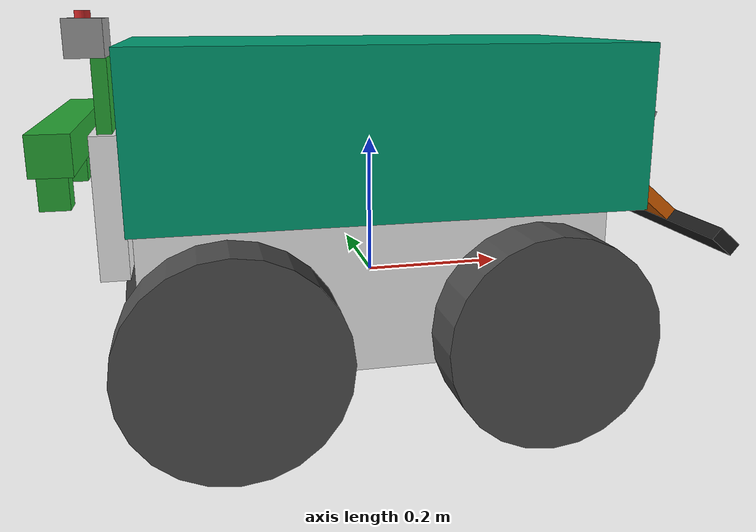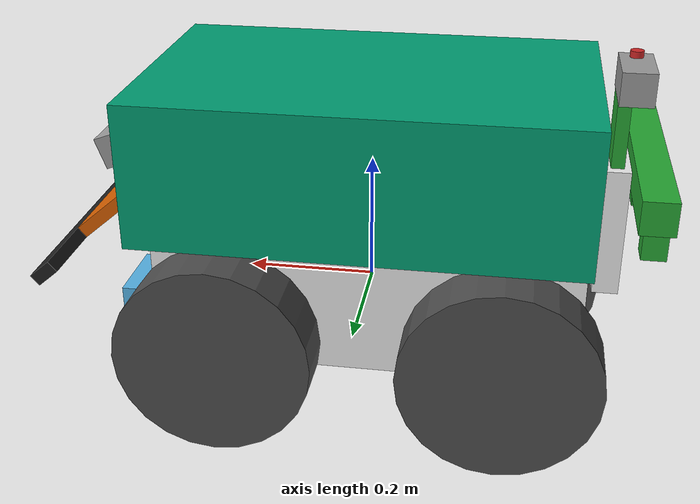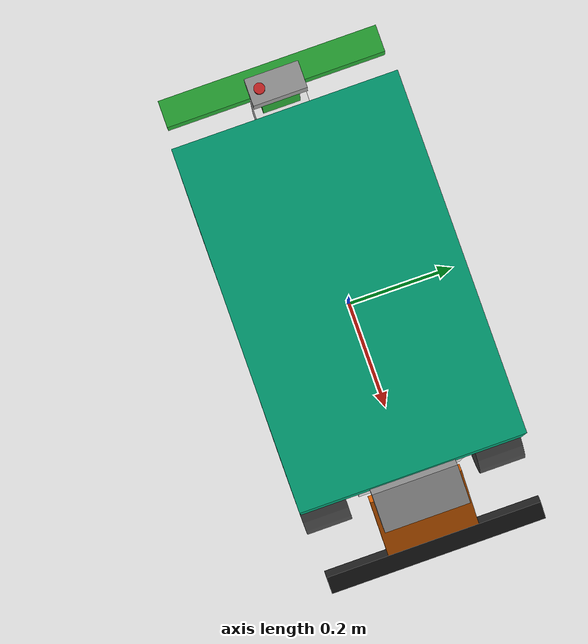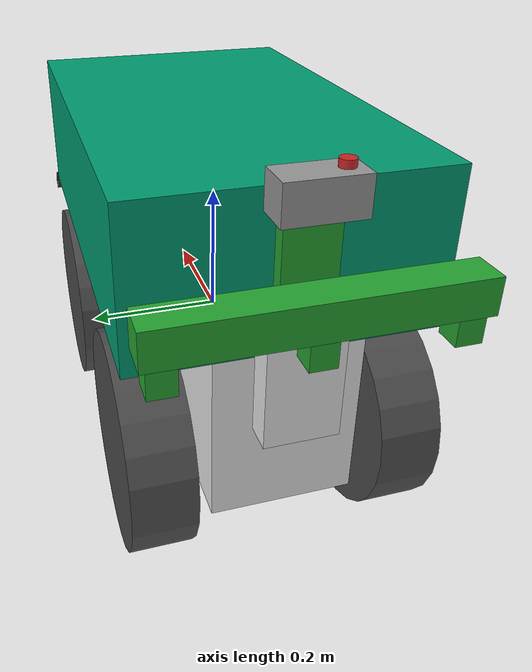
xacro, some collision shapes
<?xml version="1.0" encoding="UTF-8"?>
<!-- Fichier principal de construction du robot -->
<robot name="oz440" xmlns:xacro="http://www.ros.org/wiki/xacro">
	<xacro:include filename="$(find oz440_description)/urdf/properties.xacro" />
    <xacro:include filename="$(find oz440_description)/urdf/oz440.gazebo" />
	<xacro:include filename="$(find oz440_description)/urdf/macros.xacro" />

	<!-- link de base, OBLIGATOIRE -->
	<link name="footprint" />

	<!-- link pour la partie basse du chassis -->
	<link name="chassis_bottom">
  		<collision>
	  		<origin xyz="0 0 0" rpy="0 0 0" />
	        <geometry>
	          <box size="${chassis_bottom_length} ${chassis_bottom_width} ${chassis_bottom_height}"/>
	        </geometry>
      	</collision>
		<visual>
			<origin xyz="0 0 0" rpy="0 0 0"/>
			<geometry>
	  			<box size="${chassis_bottom_length} ${chassis_bottom_width} ${chassis_bottom_height}"/>
			</geometry>
			<material name="white"/>
		</visual>
		<inertial>
			<origin xyz="0 0 0" rpy="0 0 0"/>
			<mass value="${chassis_bottom_mass}"/>
			<box_inertia m="${chassis_bottom_mass}" x="${chassis_bottom_length}" y="${chassis_bottom_width}" z="${chassis_bottom_height}"/>
		</inertial>
    </link>

    <!--&lt;!&ndash; joint liant footprint a la partie basse du chassis &ndash;&gt;-->
    <joint name="footprint_to_chassis_bottom_joint" type="fixed">
		<parent link="footprint"/>
		<child link="chassis_bottom"/>
		<origin rpy="0 0 0" xyz="0 0 0"/>
    </joint>

	<!-- link pour la partie haute du chassis -->
	<link name="chassis_top">
		<collision>
			<origin xyz="0 0 0" rpy="0 0 0" />
			<geometry>
				<box size="${chassis_top_length} ${chassis_top_width} ${chassis_top_height}"/>
			</geometry>
		</collision>

		<visual>
			<origin xyz="0 0 0" rpy="0 0 0"/>
			<geometry>
				<box size="${chassis_top_length} ${chassis_top_width} ${chassis_top_height}"/>
			</geometry>
		</visual>
		<inertial>
			<origin xyz="0 0 0" rpy="0 0 0"/>
			<mass value="${chassis_top_mass}"/>
			<box_inertia m="${chassis_top_mass}" x="${chassis_top_length}" y="${chassis_top_width}" z="${chassis_top_height}"/>
		</inertial>
	</link>

	<!-- joint liant les deux partie du chassis -->
	<joint name="chassis_bottom_to_chassis_top" type="fixed">
		<parent link="chassis_bottom"/>
		<child link="chassis_top"/>
		<origin rpy="0 0 0" xyz="0 0 ${chassis_bottom_height/2+chassis_top_height/2}"/>
	</joint>

	<!-- inclusion du porte outils -->
    <actuator_macro parent="chassis_bottom"/>

    <!-- inclusion des roues -->
	<wheel fb="front" lr="right" tX="1" tY="-1"/>
	<wheel fb="front" lr="left" tX="1" tY="1"/>
	<wheel fb="back" lr="right" tX="-1" tY="-1"/>
	<wheel fb="back" lr="left" tX="-1" tY="1"/>

	<!-- inclusion des roues -->
	<center fb="front" lr="right" tX="1" tY="-1"/>
	<center fb="front" lr="left" tX="1" tY="1"/>
	<center fb="back" lr="right" tX="-1" tY="-1"/>
	<center fb="back" lr="left" tX="-1" tY="1"/>

	<!-- inclusion de la camera stereo -->
	<camera_stereo parent="chassis_bottom"/>

	<!-- inclusion du lidar -->
	<lidar parent="chassis_bottom"/>

	<!-- inclusion de l'IMU -->
	<IMU parent="actuator_base_link"/>

	<!-- inclusion du bumper -->
	<bumper parent="chassis_top"/>

</robot>

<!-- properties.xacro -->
<!-- Fichier contenant les differents parametres pouvant etre modifies -->
<robot name="oz440" xmlns:xacro="http://www.ros.org/wiki/xacro">

	<xacro:property name="PI" value="3.1415926535897931"/>

	<!-- Proprietes de la partie basse du robot -->
	<xacro:property name="chassis_bottom_height" value="0.243"/>
	<xacro:property name="chassis_bottom_width" value="0.20"/>
	<xacro:property name="chassis_bottom_length" value="0.67454"/>
	<xacro:property name="chassis_bottom_mass" value="30"/>

	<!-- Proprietes de la partie haute du robot -->
	<xacro:property name="chassis_top_height" value="0.220"/>
	<xacro:property name="chassis_top_width" value="0.42"/>
	<xacro:property name="chassis_top_length" value="0.67454"/>
	<xacro:property name="chassis_top_mass" value="70"/>

	<!-- Proprietes des roues -->
	<xacro:property name="wheel_diameter" value="0.3092"/>
	<xacro:property name="wheel_width" value="0.08761"/>
	<xacro:property name="wheel_transmission_height" value="0.058"/>
	<xacro:property name="wheel_chassis_bottom_spacing" value="0.025"/>
	<xacro:property name="wheels_spacing" value="0.435"/>
	<xacro:property name="wheel_mass" value="3"/>

	<!-- Proprietes du porte outils -->
	<xacro:property name="actuator_base_Mass" value="1"/>
	<xacro:property name="actuator_base_Length" value="0.04"/>
	<xacro:property name="actuator_base_Width" value="0.1"/>
	<xacro:property name="actuator_base_Height" value="0.2"/>
	<xacro:property name="actuator_base_chassis_spacing" value="0.01"/>

	<xacro:property name="actuator_part1_Mass" value="0.5"/>
	<xacro:property name="actuator_part1_Length" value="0.05"/>
	<xacro:property name="actuator_part1_Width" value="0.41"/>
	<xacro:property name="actuator_part1_Height" value="0.05"/>

	<xacro:property name="actuator_part2_Mass" value="0.5"/>
	<xacro:property name="actuator_part2_Length" value="0.035"/>
	<xacro:property name="actuator_part2_Width" value="0.035"/>
	<xacro:property name="actuator_part2_Height" value="0.04"/>

	<!-- Proprietes de la camera -->
	<xacro:property name="cameraSizeX" value="0.075"/>
	<xacro:property name="cameraSizeY" value="0.16"/>
	<xacro:property name="cameraSizeZ" value="0.05"/>
	<xacro:property name="cameraMass" value="0.5"/>
	<xacro:property name="cameras_spacing" value="0.1"/>
	<xacro:property name="camera_inclination" value="20"/>
	<xacro:property name="camera_originZ" value="0.34714"/>

	<!-- Proprietes du lidar -->
	<xacro:property name="lidar_Lenght" value="0.06855"/>
	<xacro:property name="lidar_Width" value="0.124"/>
	<xacro:property name="lidar_Height" value="0.106"/>
	<xacro:property name="lidar_Mass" value="0.5"/>
	<xacro:property name="lidar_chassis_bottom_spacing" value="0.01472"/>

	<!-- Proprietes de l'IMU -->
	<xacro:property name="IMU_base_Mass" value="0.5"/>
	<xacro:property name="IMU_base_Length" value="0.02"/>
	<xacro:property name="IMU_base_Width" value="0.07"/>
	<xacro:property name="IMU_base_Height" value="0.1"/>

	<xacro:property name="IMU_Mass" value="0.2"/>
	<xacro:property name="IMU_Length" value="0.05"/>
	<xacro:property name="IMU_Width" value="0.1"/>
	<xacro:property name="IMU_Height" value="0.05"/>

	<!-- Proprietes du bumper -->
	<xacro:property name="bumper_base_Mass" value="0.3"/>
	<xacro:property name="bumper_base_Length" value="0.13"/>
	<xacro:property name="bumper_base_Width" value="0.17340"/>
	<xacro:property name="bumper_base_Height" value="0.02"/>
	<xacro:property name="bumper_base_Inclination" value="-40"/>

	<xacro:property name="bumper_Mass" value="0.2"/>
	<xacro:property name="bumper_Length" value="0.04"/>
	<xacro:property name="bumper_Width" value="0.41"/>
	<xacro:property name="bumper_Height" value="0.02"/>

</robot>

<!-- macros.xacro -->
<!-- Ce fichier contient toutes les macros utilises pour la creation du robot
Les proprietes sont modifiables dans le fichiers properties.xacro -->
<robot name="oz440" xmlns:xacro="http://www.ros.org/wiki/xacro">

    <!-- macro pour calculer l'inertie d'un cylindre -->
    <xacro:macro name="cylinder_inertia" params="m r h">
        <inertia  ixx="${m*(3*r*r+h*h)/12}" ixy = "0" ixz = "0"
                  iyy="${m*(3*r*r+h*h)/12}" iyz = "0"
                  izz="${m*r*r/2}"
        />
    </xacro:macro>

    <!-- macro pour calculer l'inertie d'un pave -->
    <xacro:macro name="box_inertia" params="m x y z">
        <inertia  ixx="${m*(y*y+z*z)/12}" ixy = "0" ixz = "0"
                  iyy="${m*(x*x+z*z)/12}" iyz = "0"
                  izz="${m*(x*x+z*z)/12}"
        />
    </xacro:macro>

    <!-- macro pour calculer l'inertie d'une sphere -->
    <xacro:macro name="sphere_inertia" params="m r">
        <inertia  ixx="${2*m*r*r/5}" ixy = "0" ixz = "0"
                  iyy="${2*m*r*r/5}" iyz = "0"
                  izz="${2*m*r*r/5}"
        />
    </xacro:macro>

    <!-- macro pour creer les centres  -->
    <xacro:macro name="center" params="fb lr tX tY">

        <link name="${fb}_${lr}_center">
            <visual>
                <origin xyz="0 0 0" rpy="0 ${PI/2} ${PI/2}" />
                <geometry>
                    <cylinder length="${wheel_width-0.02}" radius="${wheel_diameter/4}"/>
                </geometry>
            </visual>

            <inertial>
                <origin xyz="0 0 0" rpy="0 ${PI/2} ${PI/2}" />
                <mass value="${wheel_mass/2}"/>
                <cylinder_inertia m="${wheel_mass/2}" r="${wheel_diameter/4}" h="${wheel_width}"/>
            </inertial>

        </link>

        <gazebo reference="${fb}_${lr}_center">
            <gravity>true</gravity>
            <mu1 value="0.99"/>
            <mu2 value="0.99"/>
            <kp  value="1e+7" />
            <kd  value="1.0" />
            <material>Gazebo/Grey</material>
        </gazebo>

        <joint name="${fb}_${lr}_wheel_to_wheel_center" type="fixed">
        <parent link="${fb}_${lr}_wheel"/>
        <child link="${fb}_${lr}_center"/>
        <origin xyz="0 0 0" rpy="0 0 0"/>
        </joint>

    </xacro:macro>

    <!-- macro pour creer une roue -->
    <xacro:macro name="wheel" params="fb lr tX tY">

        <link name="${fb}_${lr}_wheel">

            <collision>
                <origin xyz="0 0 0" rpy="0 ${PI/2} ${PI/2}" />
                <geometry>
                    <cylinder length="${wheel_width}" radius="${wheel_diameter/2}"/>
                </geometry>
            </collision>

            <visual>
                <origin xyz="${wheel_diameter/2} -${wheel_width/2} -${wheel_diameter/2}" rpy="0 0 ${PI/2}" />
                <geometry>
                    <mesh filename="model://Wheel/pneu.dae" scale ="0.001 0.001 0.001" />
                </geometry>
            </visual>

            <inertial>
                <origin xyz="0 0 0" rpy="0 ${PI/2} ${PI/2}" />
                <mass value="${wheel_mass}"/>
                <cylinder_inertia m="${wheel_mass}" r="${wheel_diameter/2}" h="${wheel_width}"/>
            </inertial>

        </link>

        <gazebo reference="${fb}_${lr}_wheel">
            <gravity>true</gravity>
            <mu1 value="10"/>
            <mu2 value="10"/>
            <kp  value="1e+7" />
            <kd  value="100.0" />
            <material>Gazebo/DarkGrey</material>
        </gazebo>

        <joint name="${fb}_${lr}_wheel_hinge" type="continuous">
            <parent link="chassis_bottom"/>
            <child link="${fb}_${lr}_wheel"/>
            <origin xyz="${tX*wheels_spacing/2} ${tY*((chassis_bottom_width/2)+wheel_chassis_bottom_spacing+(wheel_width/2))} ${wheel_transmission_height-chassis_bottom_height/2}" rpy="0 0 0" />
            <axis xyz="0 1 0" rpy="0 0 0" />
            <dynamics damping="0.0" friction="0.0"/>
        </joint>

        <transmission name="${fb}_${lr}_trans">
            <type>transmission_interface/SimpleTransmission</type>
            <joint name="${fb}_${lr}_wheel_hinge">
                <hardwareInterface>EffortJointInterface</hardwareInterface>
            </joint>
            <actuator name="${fb}_${lr}_Motor">
                <hardwareInterface>EffortJointInterface</hardwareInterface>
                <mechanicalRedu.ction>46</mechanicalRedu.ction>
            </actuator>
        </transmission>

    </xacro:macro>

    <!-- macro pour le porte outils -->
    <xacro:macro name="actuator_macro" params="parent">

        <link name="actuator_base_link">

            <inertial>
                <mass value="1"/>
                <origin xyz="0 0 0" rpy="0 0 0"/>
                <box_inertia m="${actuator_base_Mass}" x="${actuator_base_Length}" y="${actuator_base_Width}" z="${actuator_base_Height}"/>
            </inertial>

            <collision name="collision_actuator">
                <origin xyz="0 0 0" rpy="0 0 0"/>
                <geometry>
                    <box size="${actuator_base_Length} ${actuator_base_Width} ${actuator_base_Height}"/>
                </geometry>
            </collision>

            <visual>
                <origin xyz="0 0 0" rpy="0 0 0"/>
                <geometry>
                    <box size="${actuator_base_Length} ${actuator_base_Width} ${actuator_base_Height}"/>
                </geometry>
            </visual>
        </link>

        <gazebo reference="actuator_base_link">
            <mu1 value="0.99"/>
            <mu2 value="0.99"/>
            <kp  value="1e+7" />
            <kd  value="1.0" />
            <fdir1 value="0 0 0"/>
            <material> Gazebo/white </material>
        </gazebo>

        <link name="actuator_part1_link">

            <inertial>
                <mass value="${actuator_part1_Mass}"/>
                <origin xyz="0 0 0" rpy="0 0 0"/>
                <box_inertia m="${actuator_part1_Mass}" x="${actuator_part1_Length}" y="${actuator_part1_Width}" z="${actuator_part1_Height}"/>
            </inertial>

            <collision name="collision_actuator">
                <origin xyz="0 0 0" rpy="0 0 0"/>
                <geometry>
                    <box size="${actuator_part1_Length} ${actuator_part1_Width} ${actuator_part1_Height}"/>
                </geometry>
            </collision>

            <visual>
                <origin xyz="0 0 0" rpy="0 0 0"/>
                <geometry>
                    <box size="${actuator_part1_Length} ${actuator_part1_Width} ${actuator_part1_Height}"/>
                </geometry>
            </visual>

        </link>

        <gazebo reference="actuator_part1_link">
            <mu1 value="0.99"/>
            <mu2 value="0.99"/>
            <kp  value="1e+7" />
            <kd  value="1.0" />
            <fdir1 value="0 0 0"/>
            <material>Gazebo/Green</material>
        </gazebo>

        <link name="actuator_part21_link">

            <inertial>
                <mass value="${actuator_part2_Mass}"/>
                <origin xyz="0 0 0" rpy="0 0 0"/>
                <box_inertia m="${actuator_part2_Mass}" x="${actuator_part2_Length}" y="${actuator_part2_Width}" z="${actuator_part2_Height}"/>
            </inertial>

            <collision name="collision_actuator">
                <origin xyz="0 0 0" rpy="0 0 0"/>
                <geometry>
                    <box size="${actuator_part2_Length} ${actuator_part2_Width} ${actuator_part2_Height}"/>
                </geometry>
            </collision>

            <visual>
                <origin xyz="0 0 0" rpy="0 0 0"/>
                <geometry>
                    <box size="${actuator_part2_Length} ${actuator_part2_Width} ${actuator_part2_Height}"/>
                </geometry>
            </visual>

        </link>

        <link name="actuator_part22_link">

            <inertial>
                <mass value="${actuator_part2_Mass}"/>
                <origin xyz="0 0 0" rpy="0 0 0"/>
                <box_inertia m="${actuator_part2_Mass}" x="${actuator_part2_Length}" y="${actuator_part2_Width}" z="${actuator_part2_Height}"/>
            </inertial>

            <collision name="collision_actuator">
                <origin xyz="0 0 0" rpy="0 0 0"/>
                <geometry>
                    <box size="${actuator_part2_Length} ${actuator_part2_Width} ${actuator_part2_Height}"/>
                </geometry>
            </collision>

            <visual>
                <origin xyz="0 0 0" rpy="0 0 0"/>
                <geometry>
                    <box size="${actuator_part2_Length} ${actuator_part2_Width} ${actuator_part2_Height}"/>
                </geometry>
            </visual>

        </link>

        <link name="actuator_part23_link">

            <inertial>
                <mass value="${actuator_part2_Mass}"/>
                <origin xyz="0 0 0" rpy="0 0 0"/>
                <box_inertia m="${actuator_part2_Mass}" x="${actuator_part2_Length}" y="${actuator_part2_Width}" z="${actuator_part2_Height}"/>
            </inertial>

            <collision name="collision_actuator">
                <origin xyz="0 0 0" rpy="0 0 0"/>
                <geometry>
                    <box size="${actuator_part2_Length} ${actuator_part2_Width} ${actuator_part2_Height}"/>
                </geometry>
            </collision>

            <visual>
                <origin xyz="0 0 0" rpy="0 0 0"/>
                <geometry>
                    <box size="${actuator_part2_Length} ${actuator_part2_Width} ${actuator_part2_Height}"/>
                </geometry>
            </visual>

        </link>

        <gazebo reference="actuator_part21_link">
            <mu1 value="0.99"/>
            <mu2 value="0.99"/>
            <kp  value="1e+7" />
            <kd  value="1.0" />
            <fdir1 value="0 0 0"/>
            <material>Gazebo/Green</material>
        </gazebo>

        <gazebo reference="actuator_part22_link">
            <mu1 value="0.99"/>
            <mu2 value="0.99"/>
            <kp  value="1e+7" />
            <kd  value="1.0" />
            <fdir1 value="0 0 0"/>
            <material>Gazebo/Green</material>
        </gazebo>

        <gazebo reference="actuator_part23_link">
            <mu1 value="0.99"/>
            <mu2 value="0.99"/>
            <kp  value="1e+7" />
            <kd  value="1.0" />
            <fdir1 value="0 0 0"/>
            <material>Gazebo/Green</material>
        </gazebo>

        <joint name="chassis_bottom_to_actuator_base_joint" type="fixed">
            <parent link="${parent}"/>
            <child link="actuator_base_link"/>
            <origin xyz="${-chassis_bottom_length/2-actuator_base_Length/2-actuator_base_chassis_spacing} 0 ${chassis_bottom_height/2}" rpy="0 0 0"/>
        </joint>

        <joint name="actuator_base_link_to_actuator_part1_joint" type="prismatic">
            <parent link="actuator_base_link"/>
            <child link="actuator_part1_link"/>
            <origin xyz="${-actuator_base_Length/2-actuator_part1_Length/2} 0 ${actuator_base_Height/2}" rpy="0 0 0"/>
            <axis rpy="0 0 0" xyz="0 0 1"/>
            <limit upper="0" lower="-0.15" effort="100" velocity="1"/>
            <dynamics damping="0.7" friction="0.98"/>
        </joint>

        <transmission name="actuator_base_link_to_actuator_part1_trans">
            <type>transmission_interface/SimpleTransmission</type>
            <joint name="actuator_base_link_to_actuator_part1_joint">
                <hardwareInterface>EffortJointInterface</hardwareInterface>
            </joint>
            <actuator name="actuator_base_link_to_actuator_part1_motor">
                <hardwareInterface>EffortJointInterface</hardwareInterface>
                <mechanicalRedu.ction>46</mechanicalRedu.ction>
            </actuator>
        </transmission>

        <joint name="actuator_part1_to_actuator_part21_joint" type="fixed">
            <parent link="actuator_part1_link"/>
            <child link="actuator_part21_link"/>
            <origin xyz="0 0 ${-actuator_part1_Height/2-actuator_part2_Height/2}" rpy="0 0 0"/>
        </joint>

        <joint name="actuator_part1_to_actuator_part22_joint" type="fixed">
            <parent link="actuator_part1_link"/>
            <child link="actuator_part22_link"/>
            <origin xyz="0 -0.18 ${-actuator_part1_Height/2-actuator_part2_Height/2}" rpy="0 0 0"/>
        </joint>

        <joint name="actuator_part1_to_actuator_part23_joint" type="fixed">
            <parent link="actuator_part1_link"/>
            <child link="actuator_part23_link"/>
            <origin xyz="0 0.18 ${-actuator_part1_Height/2-actuator_part2_Height/2}" rpy="0 0 0"/>
        </joint>

    </xacro:macro>

    <!-- macro pour l'outils -->
    <xacro:macro name="tool_macro" params="parent">

        <link name="tool1">

            <inertial>
                <origin xyz="-0.25 0 -0.22" rpy="0 0 0" />
                <mass value="4"/>
                <sphere_inertia m="${4}" r="${0.04}"/>
            </inertial>
            <gravity>1</gravity>

            <collision name="sphere">
                <origin xyz="-0.25 0 -0.22" rpy="0 0 0"/>
                <geometry>
                    <sphere radius="0.03"/>
                </geometry>
            </collision>

            <visual>
                <origin xyz="-0.25 0 -0.22" rpy="0 0 0"/>
                <geometry>
                    <sphere radius="0.03"/>
                </geometry>
            </visual>

            <visual>
                <origin xyz="-0.125 0 -0.075" rpy="0 1.03 0"/>
                <geometry>
                    <cylinder radius="0.007" length="0.30"/>
                </geometry>
            </visual>

            <visual>
                <origin xyz="-0.25 0 -0.18" rpy="0 0 0"/>
                <geometry>
                    <cylinder radius="0.007" length="0.065"/>
                </geometry>
            </visual>

        </link>

        <link name="tool2">

            <inertial>
                <origin xyz="-0.25 -0.2 -0.22" rpy="0 0 0" />
                <mass value="4"/>
                <sphere_inertia m="${4}" r="${0.04}"/>
            </inertial>
            <gravity>1</gravity>

            <collision name="sphere">
                <origin xyz="-0.25 0 -0.22" rpy="0 0 0"/>
                <geometry>
                    <sphere radius="0.03"/>
                </geometry>
            </collision>

            <visual>
                <origin xyz="-0.25 0 -0.22" rpy="0 0 0"/>
                <geometry>
                    <sphere radius="0.03"/>
                </geometry>
            </visual>

            <visual>
                <origin xyz="-0.125 0 -0.075" rpy="0 1.03 0"/>
                <geometry>
                    <cylinder radius="0.007" length="0.29"/>
                </geometry>
            </visual>

            <visual>
                <origin xyz="-0.25 0 -0.18" rpy="0 0 0"/>
                <geometry>
                    <cylinder radius="0.007" length="0.065"/>
                </geometry>
            </visual>

        </link>

        <link name="tool3">

            <inertial>
                <origin xyz="-0.25 0 -0.22" rpy="0 0 0" />
                <mass value="4"/>
                <sphere_inertia m="${4}" r="${0.04}"/>
            </inertial>
            <gravity>1</gravity>

            <collision name="sphere">
                <origin xyz="-0.25 0 -0.22" rpy="0 0 0"/>
                <geometry>
                    <sphere radius="0.03"/>
                </geometry>
            </collision>

            <visual>
                <origin xyz="-0.25 0 -0.22" rpy="0 0 0"/>
                <geometry>
                    <sphere radius="0.03"/>
                </geometry>
            </visual>

            <visual>
                <origin xyz="-0.125 0 -0.075" rpy="0 1.03 0"/>
                <geometry>
                    <cylinder radius="0.007" length="0.29"/>
                </geometry>
            </visual>

            <visual>
                <origin xyz="-0.25 0 -0.18" rpy="0 0 0"/>
                <geometry>
                    <cylinder radius="0.007" length="0.065"/>
                </geometry>
            </visual>

        </link>

        <gazebo reference="tool1">
            <mu1 value="0.99"/>
            <mu2 value="0.99"/>
            <kp  value="1e+6" />
            <kd  value="1.0" />
            <fdir1 value="0 0 0"/>
            <material> Gazebo/Grey </material>
        </gazebo>
        <gazebo reference="tool2">
            <mu1 value="0.99"/>
            <mu2 value="0.99"/>
            <kp  value="1e+6" />
            <kd  value="1.0" />
            <fdir1 value="0 0 0"/>
            <material> Gazebo/Grey </material>
        </gazebo>
        <gazebo reference="tool3">
            <mu1 value="0.99"/>
            <mu2 value="0.99"/>
            <kp  value="1e+6" />
            <kd  value="1.0" />
            <fdir1 value="0 0 0"/>
            <material> Gazebo/Grey </material>
        </gazebo>

        <joint name="tool1_to_actuator_part_21" type="fixed">
            <parent link="actuator_part21_link"/>
            <child link="tool1"/>
            <origin rpy="0 0 ${-actuator_part2_Height/2}" xyz="0 0 0"/>
        </joint>

        <joint name="tool2_to_actuator_part_22" type="fixed">
            <parent link="actuator_part22_link"/>
            <child link="tool2"/>
            <origin rpy="0 0 ${-actuator_part2_Height/2}" xyz="0 0 0"/>
        </joint>

        <joint name="tool3_to_actuator_part_23" type="fixed">
            <parent link="actuator_part23_link"/>
            <child link="tool3"/>
            <origin rpy="0 0 ${-actuator_part2_Height/2}" xyz="0 0 0"/>
        </joint>

    </xacro:macro>

    <!-- macro pour la camera stereo -->
    <xacro:macro name="camera_stereo" params="parent">

        <link name="camera_stereo_link">

            <collision>
                <origin xyz="0 0 0" rpy="0 0 0"/>
                <geometry>
                    <box size="${cameraSizeX} ${cameraSizeY} ${cameraSizeZ}"/>
                </geometry>
            </collision>

            <visual>
                <origin xyz="0 0 0" rpy="0 0 0"/>
                <geometry>
                    <box size="${cameraSizeX} ${cameraSizeY} ${cameraSizeZ}"/>
                </geometry>
            </visual>

            <inertial>
                <mass value="${cameraMass}" />
                <origin xyz="0 0 0" rpy="0 0 0"/>
                <box_inertia m="${cameraMass}" x="${cameraSizeX}" y="${cameraSizeY/2}" z="${cameraSizeZ}" />
            </inertial>
        </link>

        <gazebo reference="camera_stereo_link">
            <mu1 value="0.99"/>
            <mu2 value="0.99"/>
            <kp  value="1e+7" />
            <kd  value="1.0" />
            <fdir1 value="0 0 0"/>
            <material>Gazebo/Grey</material>
        </gazebo>

        <joint name="chassis_top_to_camera_stereo" type="fixed">
            <parent link="${parent}"/>
            <child link="camera_stereo_link"/>
            <origin rpy="0 ${camera_inclination*PI/180} 0" xyz="${chassis_bottom_length/2+cameraSizeX/2} 0 ${camera_originZ - chassis_bottom_height/2}"/>
        </joint>

    </xacro:macro>

    <!-- macro pour le lidar -->
    <xacro:macro name="lidar" params='parent'>

        <link name="lidar_link">
            <collision>
                <origin xyz="0 0 0" rpy="0 0 0"/>
                <geometry>
                    <box size="${lidar_Lenght} ${lidar_Width} ${lidar_Height}"/>
                </geometry>
            </collision>

            <visual>
                <origin xyz="0 0 0" rpy="0 0 0"/>
                <geometry>
                    <box size="${lidar_Lenght} ${lidar_Width} ${lidar_Height}"/>
                </geometry>
            </visual>

            <inertial>
                <mass value="1"/>
                <origin xyz="0 0 0" rpy="0 0 0"/>
                <box_inertia m="${lidar_Mass}" x="${lidar_Lenght}" y="${lidar_Width}" z="${lidar_Height}"/>
            </inertial>

        </link>

        <joint name="chassis_bottom_to_lidar" type="fixed">
            <parent link="${parent}"/>
            <child link="lidar_link"/>
            <origin xyz="${chassis_bottom_length/2+lidar_Lenght/2} 0 ${-chassis_bottom_height/2-lidar_chassis_bottom_spacing+lidar_Height/2}" rpy="0 0 0"/>
        </joint>

    </xacro:macro>

    <!-- macro pour l'IMU -->
    <xacro:macro name="IMU" params='parent'>

        <link name="IMU_base_link">
            <collision>
                <origin xyz="0 0 0" rpy="0 0 0"/>
                <geometry>
                    <box size="${IMU_base_Length} ${IMU_base_Width} ${IMU_base_Height}"/>
                </geometry>
            </collision>

            <visual>
                <origin xyz="0 0 0" rpy="0 0 0"/>
                <geometry>
                    <box size="${IMU_base_Length} ${IMU_base_Width} ${IMU_base_Height}"/>
                </geometry>
            </visual>

            <inertial>
                <mass value="1"/>
                <origin xyz="0 0 0" rpy="0 0 0"/>
                <box_inertia m="${IMU_base_Mass}" x="${IMU_base_Length}" y="${IMU_base_Width}" z="${IMU_base_Height}"/>
            </inertial>

        </link>

        <gazebo reference="IMU_base_link">
            <mu1 value="0.99"/>
            <mu2 value="0.99"/>
            <kp  value="1e+7" />
            <kd  value="1.0" />
            <fdir1 value="0 0 0"/>
            <material>Gazebo/Green</material>
        </gazebo>

        <link name="IMU_link">
            <collision>
                <origin xyz="0 0 0" rpy="0 0 0"/>
                <geometry>
                    <box size="${IMU_Length} ${IMU_Width} ${IMU_Height}"/>
                </geometry>
            </collision>

            <visual>
                <origin xyz="0 0 0" rpy="0 0 0"/>
                <geometry>
                    <box size="${IMU_Length} ${IMU_Width} ${IMU_Height}"/>
                </geometry>
            </visual>

            <inertial>
                <mass value="1"/>
                <origin xyz="0 0 0" rpy="0 0 0"/>
                <box_inertia m="${IMU_Mass}" x="${IMU_Length}" y="${IMU_Width}" z="${IMU_Height}"/>
            </inertial>
        </link>

        <gazebo reference="IMU_link">
            <mu1 value="0.99"/>
            <mu2 value="0.99"/>
            <kp  value="1e+7" />
            <kd  value="1.0" />
            <fdir1 value="0 0 0"/>
            <material>Gazebo/Grey</material>
        </gazebo>

        <link name="IMU_light">
            <collision>
                <origin xyz="0 0 0" rpy="0 0 0"/>
                <geometry>
                    <cylinder radius="0.01" length="0.01"/>
                </geometry>
            </collision>

            <visual>
                <origin xyz="0 0 0" rpy="0 0 0"/>
                <geometry>
                    <cylinder radius="0.01" length="0.01"/>
                </geometry>
            </visual>

            <inertial>
                <mass value="0.1"/>
                <origin xyz="0 0 0" rpy="0 0 0"/>
                <sphere_inertia m="0.1" r="0.01"/>
            </inertial>
        </link>

        <gazebo reference="IMU_light">
            <mu1 value="0.99"/>
            <mu2 value="0.99"/>
            <kp  value="1e+7" />
            <kd  value="1.0" />
            <fdir1 value="0 0 0"/>
            <material>Gazebo/Red</material>
        </gazebo>

        <joint name="actuator_base_to_IMU_base_joint" type="fixed">
            <parent link="${parent}"/>
            <child link="IMU_base_link"/>
            <origin xyz="0 0 ${actuator_base_Height/2+IMU_base_Height/2}" rpy="0 0 0"/>
        </joint>

        <joint name="IMU_base_to_IMU_joint" type="fixed">
            <parent link="IMU_base_link"/>
            <child link="IMU_link"/>
            <origin xyz="${IMU_base_Length/2-IMU_Length/2} 0 ${IMU_base_Height/2+IMU_Height/2}" rpy="0 0 0"/>
        </joint>

        <joint name="IMU_to_IMU_light" type="fixed">
            <parent link="IMU_link"/>
            <child link="IMU_light"/>
            <origin xyz="0 -0.03 ${IMU_Height/2+0.005}" rpy="0 0 0"/>
        </joint>

    </xacro:macro>

    <!-- macro pour le bumper -->
    <xacro:macro name="bumper" params='parent'>
        <link name="bumper_base_link">

            <collision>
                <origin xyz="0 0 0" rpy="0 0 0"/>
                <geometry>
                    <box size="${bumper_base_Length} ${bumper_base_Width} ${bumper_base_Height}"/>
                </geometry>
            </collision>

            <visual>
                <origin xyz="0 0 0" rpy="0 0 0"/>
                <geometry>
                    <box size="${bumper_base_Length} ${bumper_base_Width} ${bumper_base_Height}"/>
                </geometry>
            </visual>

            <inertial>
                <mass value="1"/>
                <origin xyz="0 0 0" rpy="0 0 0"/>
                <box_inertia m="${bumper_base_Mass}" x="${bumper_base_Length}" y="${bumper_base_Width}" z="${bumper_base_Height}"/>
            </inertial>

        </link>

        <link name="bumper_link">

            <collision>
                <origin xyz="0 0 0" rpy="0 0 0"/>
                <geometry>
                    <box size="${bumper_Length} ${bumper_Width} ${bumper_Height}"/>
                </geometry>
            </collision>

            <visual>
                <origin xyz="0 0 0" rpy="0 0 0"/>
                <geometry>
                    <box size="${bumper_Length} ${bumper_Width} ${bumper_Height}"/>
                </geometry>
            </visual>

            <inertial>
                <mass value="1"/>
                <origin xyz="0 0 0" rpy="0 0 0"/>
                <box_inertia m="${bumper_Mass}" x="${bumper_Length}" y="${bumper_Width}" z="${bumper_Height}"/>
            </inertial>

        </link>

        <joint name="chassis_top_to_bumper_base_joint" type="fixed">
            <parent link="${parent}"/>
            <child link="bumper_base_link"/>
            <origin xyz="${chassis_top_length/2+bumper_base_Length/2} 0 ${-chassis_top_height/2}" rpy="0 ${-bumper_base_Inclination*PI/180} 0"/>
        </joint>

        <joint name="bumper_base_to_bumper_joint" type="fixed">
            <parent link="bumper_base_link"/>
            <child link="bumper_link"/>
            <origin xyz="${bumper_base_Length/2+bumper_Length/2} 0 0" rpy="0 0 0"/>
        </joint>

    </xacro:macro>

</robot>
